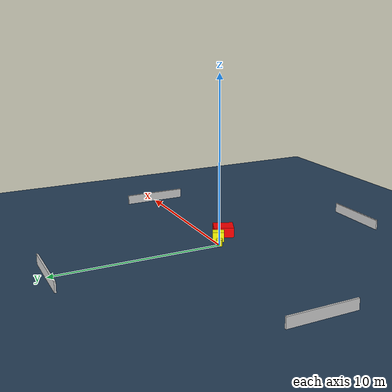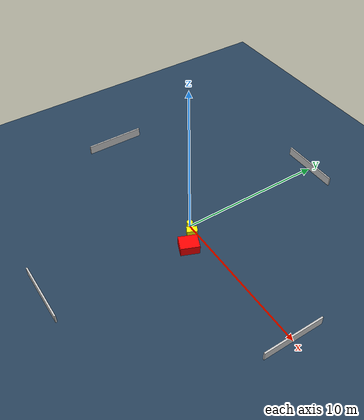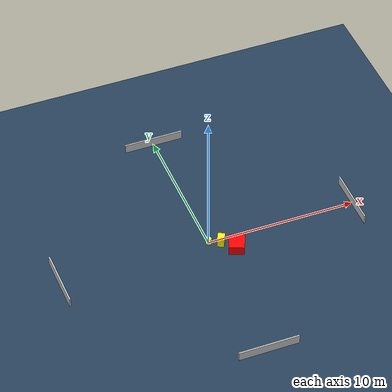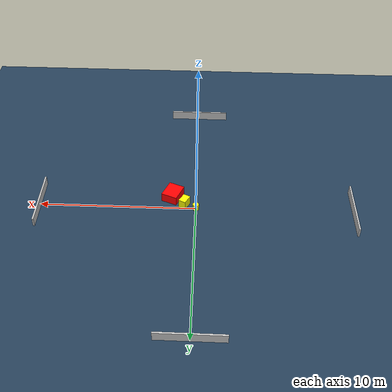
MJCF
<?xml version="1.0" ?>
<mujoco model="generated_environment">
  <option timestep="0.01" integrator="RK4" cone="elliptic"/>
  <default>
    <geom density="1"/>
  </default>
  <asset>
    <texture builtin="gradient" height="3072" name="skybox" rgb1="0.3 0.5 0.7" rgb2="0 0 0" type="skybox" width="512"/>
    <texture builtin="checker" height="300" name="groundplane" rgb1="0.2 0.3 0.4" rgb2="0.1 0.2 0.3" type="2d" width="300"/>
    <material name="groundplane" reflectance="0.2" texrepeat="5 5" texture="groundplane"/>
  </asset>
  <worldbody>
    <light dir="0 0 -1" directional="true" pos="0 0 1.5"/>
    <geom condim="3" friction="0.5 0.005 0.001" material="groundplane" name="floor" pos="0 0 0" size="0 0 0.05" type="plane"/>
    <body name="walls">
      <geom name="wall_1" condim="4" pos="-10.0 0.0 0.3" rgba="0.800000011920929 0.800000011920929 0.800000011920929 1.0" size="0.05 2.0 0.3" type="box"/>
      <geom name="wall_2" condim="4" pos="10.0 0.0 0.3" rgba="0.800000011920929 0.800000011920929 0.800000011920929 1.0" size="0.05 2.0 0.3" type="box"/>
      <geom name="wall_3" condim="4" pos="0.0 -10.0 0.3" rgba="0.800000011920929 0.800000011920929 0.800000011920929 1.0" size="2.0 0.05 0.3" type="box"/>
      <geom name="wall_4" condim="4" pos="0.0 10.0 0.3" rgba="0.800000011920929 0.800000011920929 0.800000011920929 1.0" size="2.0 0.05 0.3" type="box"/>
    </body>
    <body name="robot">
      <joint name="joint_x" type="slide" pos="0 0 0" axis="1 0 0"/>
      <joint name="joint_y" type="slide" pos="0 0 0" axis="0 1 0"/>
      <geom name="robot" type="cylinder" pos="0.0 0.0 0.2" size="0.2 0.2 0.0" mass="5.0" friction="1.0 0.005 0.0001" condim="4" rgba="1.0 1.0 0.0 1.0"/>
    </body>
    <body name="obstacle_1_movable">
      <geom name="obstacle_1_movable" condim="4" pos="0.7353865319142139 -0.31845179340164936 0.3" euler="0 0 332.3933688773773" friction="0.0 0.005 0.001" rgba="1.0 1.0 0.0 1.0" size="0.233267871836829 0.3380264875776745 0.3" type="box" mass="0.1"/>
      <joint type="free"/>
    </body>
    <body name="obstacle_2_static">
      <geom name="obstacle_2_static" condim="4" pos="1.5088109247894477 -1.0559133503971077 0.3" euler="0 0 247.22209999133534" friction="0.0 0.005 0.001" rgba="1.0 0.0 0.0 1.0" size="0.6101422833689587 0.514959389899144 0.3" type="box"/>
    </body>
  </worldbody>
  <actuator>
    <motor name="actuator_x" joint="joint_x" gear="1" ctrlrange="-1 1"/>
    <motor name="actuator_y" joint="joint_y" gear="1" ctrlrange="-1 1"/>
  </actuator>
</mujoco>
